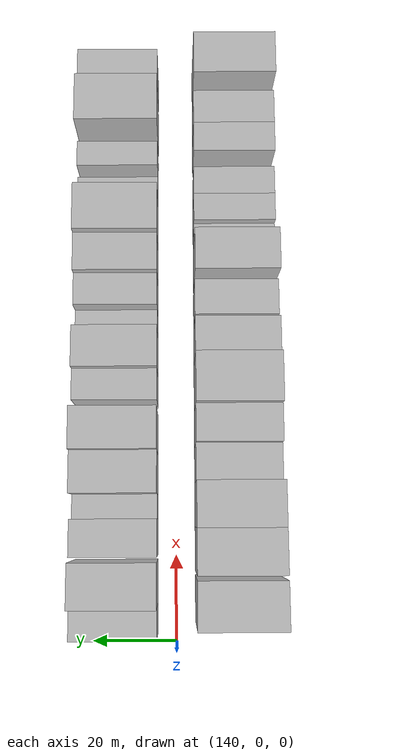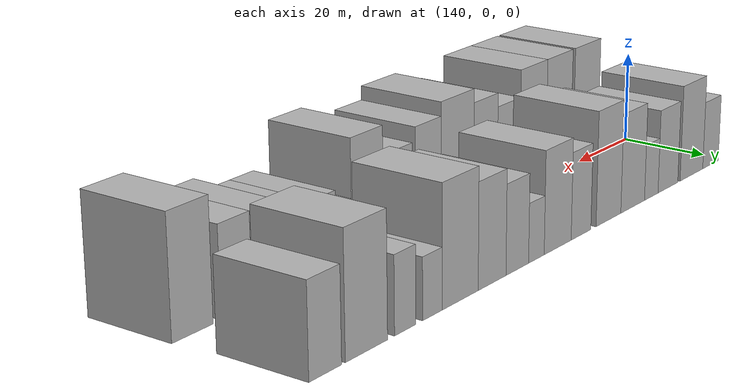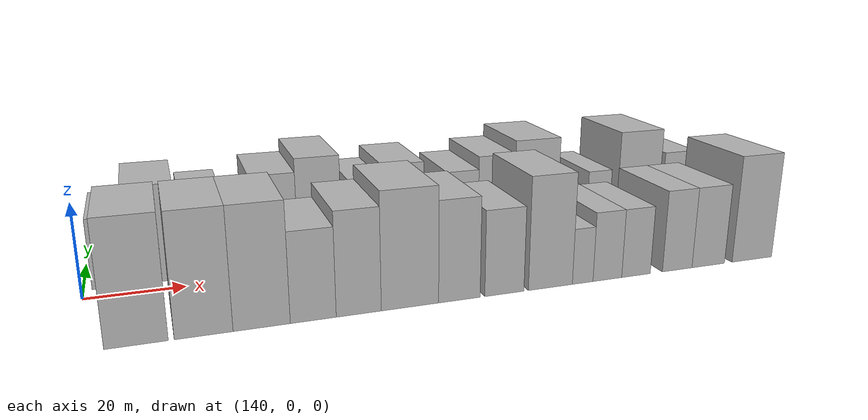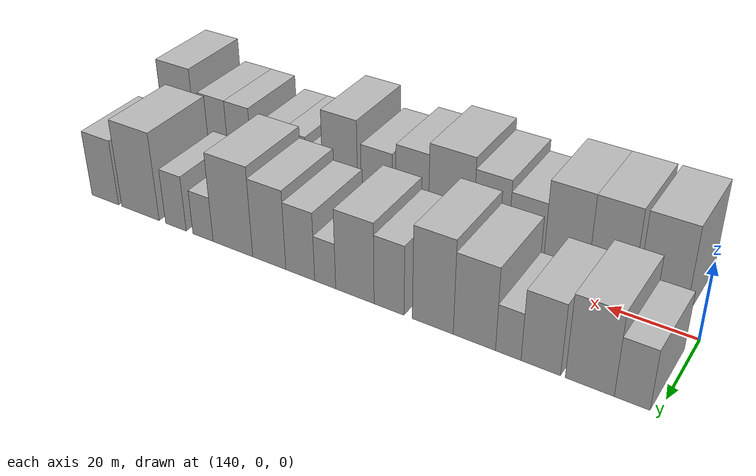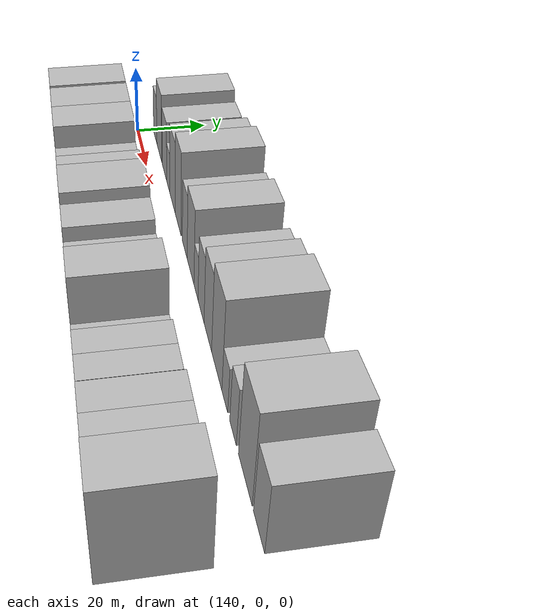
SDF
<sdf version="1.6">
 <world name="default">
  <model name="building_15">
   <static>1</static>
   <pose>145.2648 14.5000 0 0.000000 0.000000 1.570796</pose>
   <link name="link">
    <pose>0 0 7.50 0 0 0</pose>
    <collision name="collision"><geometry><box><size>20.0000 7.1987 15.0000</size></box></geometry></collision>
    <visual name="visual">
     <cast_shadows>0</cast_shadows>
     <geometry><box><size>20.0000 7.1987 15.0000</size></box></geometry>
     <material>
      <script>
       <uri>model://HANNAS_wall/materials/scripts</uri>
       <uri>model://HANNAS_wall/materials/textures</uri>
       <name>vrc/HANNAS_wall</name>
      </script>
     </material>
    </visual>
   </link>
  </model>
  <model name="building_16">
   <static>1</static>
   <pose>153.9659 14.5000 0 0.000000 0.000000 1.570796</pose>
   <link name="link">
    <pose>0 0 10.50 0 0 0</pose>
    <collision name="collision"><geometry><box><size>20.0000 10.2035 21.0000</size></box></geometry></collision>
    <visual name="visual">
     <cast_shadows>0</cast_shadows>
     <geometry><box><size>20.0000 10.2035 21.0000</size></box></geometry>
     <material>
      <script>
       <uri>model://HANNAS_wall/materials/scripts</uri>
       <uri>model://HANNAS_wall/materials/textures</uri>
       <name>vrc/HANNAS_wall</name>
      </script>
     </material>
    </visual>
   </link>
  </model>
  <model name="building_17">
   <static>1</static>
   <pose>164.3430 14.5000 0 0.000000 0.000000 1.570796</pose>
   <link name="link">
    <pose>0 0 9.00 0 0 0</pose>
    <collision name="collision"><geometry><box><size>20.0000 8.5507 18.0000</size></box></geometry></collision>
    <visual name="visual">
     <cast_shadows>0</cast_shadows>
     <geometry><box><size>20.0000 8.5507 18.0000</size></box></geometry>
     <material>
      <script>
       <uri>model://HANNAS_wall/materials/scripts</uri>
       <uri>model://HANNAS_wall/materials/textures</uri>
       <name>vrc/HANNAS_wall</name>
      </script>
     </material>
    </visual>
   </link>
  </model>
  <model name="building_18">
   <static>1</static>
   <pose>171.4657 14.5000 0 0.000000 0.000000 1.570796</pose>
   <link name="link">
    <pose>0 0 6.00 0 0 0</pose>
    <collision name="collision"><geometry><box><size>20.0000 5.6948 12.0000</size></box></geometry></collision>
    <visual name="visual">
     <cast_shadows>0</cast_shadows>
     <geometry><box><size>20.0000 5.6948 12.0000</size></box></geometry>
     <material>
      <script>
       <uri>model://HANNAS_wall/materials/scripts</uri>
       <uri>model://HANNAS_wall/materials/textures</uri>
       <name>vrc/HANNAS_wall</name>
      </script>
     </material>
    </visual>
   </link>
  </model>
  <model name="building_19">
   <static>1</static>
   <pose>179.1541 14.5000 0 0.000000 0.000000 1.570796</pose>
   <link name="link">
    <pose>0 0 10.50 0 0 0</pose>
    <collision name="collision"><geometry><box><size>20.0000 9.6819 21.0000</size></box></geometry></collision>
    <visual name="visual">
     <cast_shadows>0</cast_shadows>
     <geometry><box><size>20.0000 9.6819 21.0000</size></box></geometry>
     <material>
      <script>
       <uri>model://HANNAS_wall/materials/scripts</uri>
       <uri>model://HANNAS_wall/materials/textures</uri>
       <name>vrc/HANNAS_wall</name>
      </script>
     </material>
    </visual>
   </link>
  </model>
  <model name="building_20">
   <static>1</static>
   <pose>188.8619 14.5000 0 0.000000 0.000000 1.570796</pose>
   <link name="link">
    <pose>0 0 12.00 0 0 0</pose>
    <collision name="collision"><geometry><box><size>20.0000 9.7337 24.0000</size></box></geometry></collision>
    <visual name="visual">
     <cast_shadows>0</cast_shadows>
     <geometry><box><size>20.0000 9.7337 24.0000</size></box></geometry>
     <material>
      <script>
       <uri>model://HANNAS_wall/materials/scripts</uri>
       <uri>model://HANNAS_wall/materials/textures</uri>
       <name>vrc/HANNAS_wall</name>
      </script>
     </material>
    </visual>
   </link>
  </model>
  <model name="building_21">
   <static>1</static>
   <pose>199.4369 14.5000 0 0.000000 0.000000 1.570796</pose>
   <link name="link">
    <pose>0 0 9.00 0 0 0</pose>
    <collision name="collision"><geometry><box><size>20.0000 7.4164 18.0000</size></box></geometry></collision>
    <visual name="visual">
     <cast_shadows>0</cast_shadows>
     <geometry><box><size>20.0000 7.4164 18.0000</size></box></geometry>
     <material>
      <script>
       <uri>model://HANNAS_wall/materials/scripts</uri>
       <uri>model://HANNAS_wall/materials/textures</uri>
       <name>vrc/HANNAS_wall</name>
      </script>
     </material>
    </visual>
   </link>
  </model>
  <model name="building_22">
   <static>1</static>
   <pose>208.0406 14.5000 0 0.000000 0.000000 1.570796</pose>
   <link name="link">
    <pose>0 0 10.50 0 0 0</pose>
    <collision name="collision"><geometry><box><size>20.0000 9.7910 21.0000</size></box></geometry></collision>
    <visual name="visual">
     <cast_shadows>0</cast_shadows>
     <geometry><box><size>20.0000 9.7910 21.0000</size></box></geometry>
     <material>
      <script>
       <uri>model://HANNAS_wall/materials/scripts</uri>
       <uri>model://HANNAS_wall/materials/textures</uri>
       <name>vrc/HANNAS_wall</name>
      </script>
     </material>
    </visual>
   </link>
  </model>
  <model name="building_23">
   <static>1</static>
   <pose>215.6830 14.5000 0 0.000000 0.000000 1.570796</pose>
   <link name="link">
    <pose>0 0 6.00 0 0 0</pose>
    <collision name="collision"><geometry><box><size>20.0000 5.4938 12.0000</size></box></geometry></collision>
    <visual name="visual">
     <cast_shadows>0</cast_shadows>
     <geometry><box><size>20.0000 5.4938 12.0000</size></box></geometry>
     <material>
      <script>
       <uri>model://HANNAS_wall/materials/scripts</uri>
       <uri>model://HANNAS_wall/materials/textures</uri>
       <name>vrc/HANNAS_wall</name>
      </script>
     </material>
    </visual>
   </link>
  </model>
  <model name="building_24">
   <static>1</static>
   <pose>222.2997 14.5000 0 0.000000 0.000000 1.570796</pose>
   <link name="link">
    <pose>0 0 9.00 0 0 0</pose>
    <collision name="collision"><geometry><box><size>20.0000 7.7396 18.0000</size></box></geometry></collision>
    <visual name="visual">
     <cast_shadows>0</cast_shadows>
     <geometry><box><size>20.0000 7.7396 18.0000</size></box></geometry>
     <material>
      <script>
       <uri>model://HANNAS_wall/materials/scripts</uri>
       <uri>model://HANNAS_wall/materials/textures</uri>
       <name>vrc/HANNAS_wall</name>
      </script>
     </material>
    </visual>
   </link>
  </model>
  <model name="building_25">
   <static>1</static>
   <pose>230.7460 14.5000 0 0.000000 0.000000 1.570796</pose>
   <link name="link">
    <pose>0 0 10.50 0 0 0</pose>
    <collision name="collision"><geometry><box><size>20.0000 9.1529 21.0000</size></box></geometry></collision>
    <visual name="visual">
     <cast_shadows>0</cast_shadows>
     <geometry><box><size>20.0000 9.1529 21.0000</size></box></geometry>
     <material>
      <script>
       <uri>model://HANNAS_wall/materials/scripts</uri>
       <uri>model://HANNAS_wall/materials/textures</uri>
       <name>vrc/HANNAS_wall</name>
      </script>
     </material>
    </visual>
   </link>
  </model>
  <model name="building_26">
   <static>1</static>
   <pose>240.9980 14.5000 0 0.000000 0.000000 1.570796</pose>
   <link name="link">
    <pose>0 0 12.00 0 0 0</pose>
    <collision name="collision"><geometry><box><size>20.0000 11.3510 24.0000</size></box></geometry></collision>
    <visual name="visual">
     <cast_shadows>0</cast_shadows>
     <geometry><box><size>20.0000 11.3510 24.0000</size></box></geometry>
     <material>
      <script>
       <uri>model://HANNAS_wall/materials/scripts</uri>
       <uri>model://HANNAS_wall/materials/textures</uri>
       <name>vrc/HANNAS_wall</name>
      </script>
     </material>
    </visual>
   </link>
  </model>
  <model name="building_27">
   <static>1</static>
   <pose>249.6406 14.5000 0 0.000000 0.000000 1.570796</pose>
   <link name="link">
    <pose>0 0 6.00 0 0 0</pose>
    <collision name="collision"><geometry><box><size>20.0000 5.9344 12.0000</size></box></geometry></collision>
    <visual name="visual">
     <cast_shadows>0</cast_shadows>
     <geometry><box><size>20.0000 5.9344 12.0000</size></box></geometry>
     <material>
      <script>
       <uri>model://HANNAS_wall/materials/scripts</uri>
       <uri>model://HANNAS_wall/materials/textures</uri>
       <name>vrc/HANNAS_wall</name>
      </script>
     </material>
    </visual>
   </link>
  </model>
  <model name="building_28">
   <static>1</static>
   <pose>257.7267 14.5000 0 0.000000 0.000000 1.570796</pose>
   <link name="link">
    <pose>0 0 7.50 0 0 0</pose>
    <collision name="collision"><geometry><box><size>20.0000 6.2377 15.0000</size></box></geometry></collision>
    <visual name="visual">
     <cast_shadows>0</cast_shadows>
     <geometry><box><size>20.0000 6.2377 15.0000</size></box></geometry>
     <material>
      <script>
       <uri>model://HANNAS_wall/materials/scripts</uri>
       <uri>model://HANNAS_wall/materials/textures</uri>
       <name>vrc/HANNAS_wall</name>
      </script>
     </material>
    </visual>
   </link>
  </model>
  <model name="building_29">
   <static>1</static>
   <pose>268.7021 14.5000 0 0.000000 0.000000 1.570796</pose>
   <link name="link">
    <pose>0 0 12.00 0 0 0</pose>
    <collision name="collision"><geometry><box><size>20.0000 11.7132 24.0000</size></box></geometry></collision>
    <visual name="visual">
     <cast_shadows>0</cast_shadows>
     <geometry><box><size>20.0000 11.7132 24.0000</size></box></geometry>
     <material>
      <script>
       <uri>model://HANNAS_wall/materials/scripts</uri>
       <uri>model://HANNAS_wall/materials/textures</uri>
       <name>vrc/HANNAS_wall</name>
      </script>
     </material>
    </visual>
   </link>
  </model>
  <model name="building_30">
   <static>1</static>
   <pose>279.8736 14.5000 0 0.000000 0.000000 1.570796</pose>
   <link name="link">
    <pose>0 0 9.00 0 0 0</pose>
    <collision name="collision"><geometry><box><size>20.0000 8.6298 18.0000</size></box></geometry></collision>
    <visual name="visual">
     <cast_shadows>0</cast_shadows>
     <geometry><box><size>20.0000 8.6298 18.0000</size></box></geometry>
     <material>
      <script>
       <uri>model://HANNAS_wall/materials/scripts</uri>
       <uri>model://HANNAS_wall/materials/textures</uri>
       <name>vrc/HANNAS_wall</name>
      </script>
     </material>
    </visual>
   </link>
  </model>
  <model name="building_45">
   <static>1</static>
   <pose>149.9659 -14.5000 0 0.000000 0.000000 1.570796</pose>
   <link name="link">
    <pose>0 0 12.00 0 0 0</pose>
    <collision name="collision"><geometry><box><size>20.0000 10.7970 24.0000</size></box></geometry></collision>
    <visual name="visual">
     <cast_shadows>0</cast_shadows>
     <geometry><box><size>20.0000 10.7970 24.0000</size></box></geometry>
     <material>
      <script>
       <uri>model://HANNAS_wall/materials/scripts</uri>
       <uri>model://HANNAS_wall/materials/textures</uri>
       <name>vrc/HANNAS_wall</name>
      </script>
     </material>
    </visual>
   </link>
  </model>
  <model name="building_46">
   <static>1</static>
   <pose>161.5160 -14.5000 0 0.000000 0.000000 1.570796</pose>
   <link name="link">
    <pose>0 0 12.00 0 0 0</pose>
    <collision name="collision"><geometry><box><size>20.0000 10.3033 24.0000</size></box></geometry></collision>
    <visual name="visual">
     <cast_shadows>0</cast_shadows>
     <geometry><box><size>20.0000 10.3033 24.0000</size></box></geometry>
     <material>
      <script>
       <uri>model://HANNAS_wall/materials/scripts</uri>
       <uri>model://HANNAS_wall/materials/textures</uri>
       <name>vrc/HANNAS_wall</name>
      </script>
     </material>
    </visual>
   </link>
  </model>
  <model name="building_47">
   <static>1</static>
   <pose>171.8872 -14.5000 0 0.000000 0.000000 1.570796</pose>
   <link name="link">
    <pose>0 0 12.00 0 0 0</pose>
    <collision name="collision"><geometry><box><size>20.0000 10.4391 24.0000</size></box></geometry></collision>
    <visual name="visual">
     <cast_shadows>0</cast_shadows>
     <geometry><box><size>20.0000 10.4391 24.0000</size></box></geometry>
     <material>
      <script>
       <uri>model://HANNAS_wall/materials/scripts</uri>
       <uri>model://HANNAS_wall/materials/textures</uri>
       <name>vrc/HANNAS_wall</name>
      </script>
     </material>
    </visual>
   </link>
  </model>
  <model name="building_48">
   <static>1</static>
   <pose>181.4517 -14.5000 0 0.000000 0.000000 1.570796</pose>
   <link name="link">
    <pose>0 0 9.00 0 0 0</pose>
    <collision name="collision"><geometry><box><size>20.0000 8.6899 18.0000</size></box></geometry></collision>
    <visual name="visual">
     <cast_shadows>0</cast_shadows>
     <geometry><box><size>20.0000 8.6899 18.0000</size></box></geometry>
     <material>
      <script>
       <uri>model://HANNAS_wall/materials/scripts</uri>
       <uri>model://HANNAS_wall/materials/textures</uri>
       <name>vrc/HANNAS_wall</name>
      </script>
     </material>
    </visual>
   </link>
  </model>
  <model name="building_49">
   <static>1</static>
   <pose>190.2039 -14.5000 0 0.000000 0.000000 1.570796</pose>
   <link name="link">
    <pose>0 0 10.50 0 0 0</pose>
    <collision name="collision"><geometry><box><size>20.0000 8.8146 21.0000</size></box></geometry></collision>
    <visual name="visual">
     <cast_shadows>0</cast_shadows>
     <geometry><box><size>20.0000 8.8146 21.0000</size></box></geometry>
     <material>
      <script>
       <uri>model://HANNAS_wall/materials/scripts</uri>
       <uri>model://HANNAS_wall/materials/textures</uri>
       <name>vrc/HANNAS_wall</name>
      </script>
     </material>
    </visual>
   </link>
  </model>
  <model name="building_50">
   <static>1</static>
   <pose>200.4456 -14.5000 0 0.000000 0.000000 1.570796</pose>
   <link name="link">
    <pose>0 0 12.00 0 0 0</pose>
    <collision name="collision"><geometry><box><size>20.0000 11.6687 24.0000</size></box></geometry></collision>
    <visual name="visual">
     <cast_shadows>0</cast_shadows>
     <geometry><box><size>20.0000 11.6687 24.0000</size></box></geometry>
     <material>
      <script>
       <uri>model://HANNAS_wall/materials/scripts</uri>
       <uri>model://HANNAS_wall/materials/textures</uri>
       <name>vrc/HANNAS_wall</name>
      </script>
     </material>
    </visual>
   </link>
  </model>
  <model name="building_51">
   <static>1</static>
   <pose>210.6554 -14.5000 0 0.000000 0.000000 1.570796</pose>
   <link name="link">
    <pose>0 0 10.50 0 0 0</pose>
    <collision name="collision"><geometry><box><size>20.0000 8.7509 21.0000</size></box></geometry></collision>
    <visual name="visual">
     <cast_shadows>0</cast_shadows>
     <geometry><box><size>20.0000 8.7509 21.0000</size></box></geometry>
     <material>
      <script>
       <uri>model://HANNAS_wall/materials/scripts</uri>
       <uri>model://HANNAS_wall/materials/textures</uri>
       <name>vrc/HANNAS_wall</name>
      </script>
     </material>
    </visual>
   </link>
  </model>
  <model name="building_52">
   <static>1</static>
   <pose>220.3078 -14.5000 0 0.000000 0.000000 1.570796</pose>
   <link name="link">
    <pose>0 0 9.00 0 0 0</pose>
    <collision name="collision"><geometry><box><size>20.0000 8.5538 18.0000</size></box></geometry></collision>
    <visual name="visual">
     <cast_shadows>0</cast_shadows>
     <geometry><box><size>20.0000 8.5538 18.0000</size></box></geometry>
     <material>
      <script>
       <uri>model://HANNAS_wall/materials/scripts</uri>
       <uri>model://HANNAS_wall/materials/textures</uri>
       <name>vrc/HANNAS_wall</name>
      </script>
     </material>
    </visual>
   </link>
  </model>
  <model name="building_53">
   <static>1</static>
   <pose>230.5731 -14.5000 0 0.000000 0.000000 1.570796</pose>
   <link name="link">
    <pose>0 0 12.00 0 0 0</pose>
    <collision name="collision"><geometry><box><size>20.0000 9.9768 24.0000</size></box></geometry></collision>
    <visual name="visual">
     <cast_shadows>0</cast_shadows>
     <geometry><box><size>20.0000 9.9768 24.0000</size></box></geometry>
     <material>
      <script>
       <uri>model://HANNAS_wall/materials/scripts</uri>
       <uri>model://HANNAS_wall/materials/textures</uri>
       <name>vrc/HANNAS_wall</name>
      </script>
     </material>
    </visual>
   </link>
  </model>
  <model name="building_54">
   <static>1</static>
   <pose>237.9627 -14.5000 0 0.000000 0.000000 1.570796</pose>
   <link name="link">
    <pose>0 0 6.00 0 0 0</pose>
    <collision name="collision"><geometry><box><size>20.0000 4.8025 12.0000</size></box></geometry></collision>
    <visual name="visual">
     <cast_shadows>0</cast_shadows>
     <geometry><box><size>20.0000 4.8025 12.0000</size></box></geometry>
     <material>
      <script>
       <uri>model://HANNAS_wall/materials/scripts</uri>
       <uri>model://HANNAS_wall/materials/textures</uri>
       <name>vrc/HANNAS_wall</name>
      </script>
     </material>
    </visual>
   </link>
  </model>
  <model name="building_55">
   <static>1</static>
   <pose>243.7754 -14.5000 0 0.000000 0.000000 1.570796</pose>
   <link name="link">
    <pose>0 0 7.50 0 0 0</pose>
    <collision name="collision"><geometry><box><size>20.0000 6.8229 15.0000</size></box></geometry></collision>
    <visual name="visual">
     <cast_shadows>0</cast_shadows>
     <geometry><box><size>20.0000 6.8229 15.0000</size></box></geometry>
     <material>
      <script>
       <uri>model://HANNAS_wall/materials/scripts</uri>
       <uri>model://HANNAS_wall/materials/textures</uri>
       <name>vrc/HANNAS_wall</name>
      </script>
     </material>
    </visual>
   </link>
  </model>
  <model name="building_56">
   <static>1</static>
   <pose>250.6615 -14.5000 0 0.000000 0.000000 1.570796</pose>
   <link name="link">
    <pose>0 0 7.50 0 0 0</pose>
    <collision name="collision"><geometry><box><size>20.0000 6.9491 15.0000</size></box></geometry></collision>
    <visual name="visual">
     <cast_shadows>0</cast_shadows>
     <geometry><box><size>20.0000 6.9491 15.0000</size></box></geometry>
     <material>
      <script>
       <uri>model://HANNAS_wall/materials/scripts</uri>
       <uri>model://HANNAS_wall/materials/textures</uri>
       <name>vrc/HANNAS_wall</name>
      </script>
     </material>
    </visual>
   </link>
  </model>
  <model name="building_57">
   <static>1</static>
   <pose>260.8574 -14.5000 0 0.000000 0.000000 1.570796</pose>
   <link name="link">
    <pose>0 0 9.00 0 0 0</pose>
    <collision name="collision"><geometry><box><size>20.0000 7.4427 18.0000</size></box></geometry></collision>
    <visual name="visual">
     <cast_shadows>0</cast_shadows>
     <geometry><box><size>20.0000 7.4427 18.0000</size></box></geometry>
     <material>
      <script>
       <uri>model://HANNAS_wall/materials/scripts</uri>
       <uri>model://HANNAS_wall/materials/textures</uri>
       <name>vrc/HANNAS_wall</name>
      </script>
     </material>
    </visual>
   </link>
  </model>
  <model name="building_58">
   <static>1</static>
   <pose>268.7795 -14.5000 0 0.000000 0.000000 1.570796</pose>
   <link name="link">
    <pose>0 0 9.00 0 0 0</pose>
    <collision name="collision"><geometry><box><size>20.0000 8.4015 18.0000</size></box></geometry></collision>
    <visual name="visual">
     <cast_shadows>0</cast_shadows>
     <geometry><box><size>20.0000 8.4015 18.0000</size></box></geometry>
     <material>
      <script>
       <uri>model://HANNAS_wall/materials/scripts</uri>
       <uri>model://HANNAS_wall/materials/textures</uri>
       <name>vrc/HANNAS_wall</name>
      </script>
     </material>
    </visual>
   </link>
  </model>
  <model name="building_59">
   <static>1</static>
   <pose>280.2648 -14.5000 0 0.000000 0.000000 1.570796</pose>
   <link name="link">
    <pose>0 0 12.00 0 0 0</pose>
    <collision name="collision"><geometry><box><size>20.0000 10.5691 24.0000</size></box></geometry></collision>
    <visual name="visual">
     <cast_shadows>0</cast_shadows>
     <geometry><box><size>20.0000 10.5691 24.0000</size></box></geometry>
     <material>
      <script>
       <uri>model://HANNAS_wall/materials/scripts</uri>
       <uri>model://HANNAS_wall/materials/textures</uri>
       <name>vrc/HANNAS_wall</name>
      </script>
     </material>
    </visual>
   </link>
  </model>
 </world>
</sdf>
